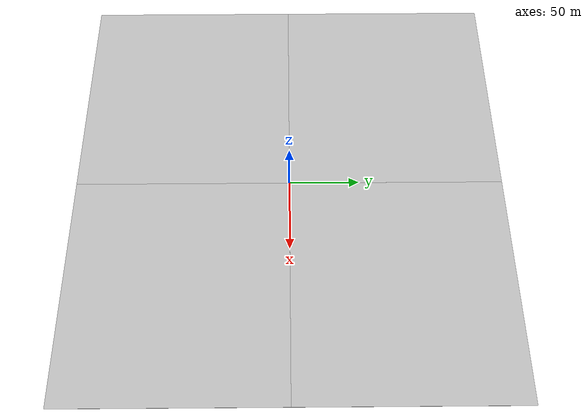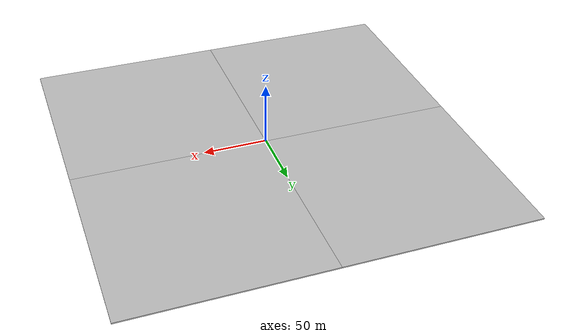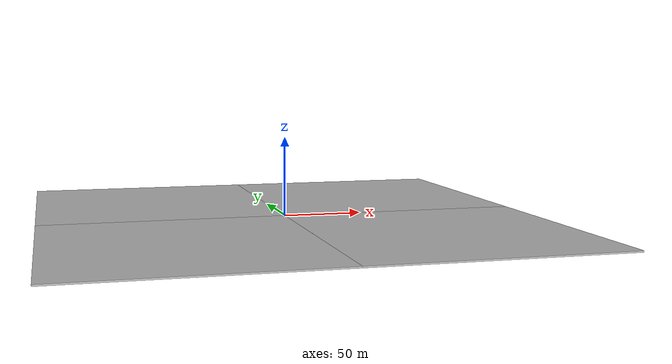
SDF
<sdf version='1.7'>
<model name='map_satellite_36.0834057_140.0767_155_155'>
  <static>true</static>
  <link name='link'>
    <collision name='collision'>
      <pose>0 0 -0.5 0 0 0</pose>
      <geometry>
        <box>
          <size>308.867 308.867 1</size>
        </box>
      </geometry>
    </collision>
    <visual name='visual0_0'>
      <pose>-77.2167 77.2167 -0.5 0 0 1.5708</pose>
      <geometry>
        <box>
          <size>154.433 154.433 1</size>
        </box>
      </geometry>
      <material>
        <script>
          <uri>model://map_satellite_36.0834057_140.0767_155_155/materials/scripts</uri>
          <uri>model://map_satellite_36.0834057_140.0767_155_155/materials/textures</uri>
          <name>map_satellite_36.0834057_140.0767_155_155/0_0</name>
        </script>
      </material>
    </visual>
    <visual name='visual0_1'>
      <pose>77.2167 77.2167 -0.5 0 0 1.5708</pose>
      <geometry>
        <box>
          <size>154.433 154.433 1</size>
        </box>
      </geometry>
      <material>
        <script>
          <uri>model://map_satellite_36.0834057_140.0767_155_155/materials/scripts</uri>
          <uri>model://map_satellite_36.0834057_140.0767_155_155/materials/textures</uri>
          <name>map_satellite_36.0834057_140.0767_155_155/0_1</name>
        </script>
      </material>
    </visual>
    <visual name='visual1_0'>
      <pose>-77.2167 -77.2167 -0.5 0 0 1.5708</pose>
      <geometry>
        <box>
          <size>154.433 154.433 1</size>
        </box>
      </geometry>
      <material>
        <script>
          <uri>model://map_satellite_36.0834057_140.0767_155_155/materials/scripts</uri>
          <uri>model://map_satellite_36.0834057_140.0767_155_155/materials/textures</uri>
          <name>map_satellite_36.0834057_140.0767_155_155/1_0</name>
        </script>
      </material>
    </visual>
    <visual name='visual1_1'>
      <pose>77.2167 -77.2167 -0.5 0 0 1.5708</pose>
      <geometry>
        <box>
          <size>154.433 154.433 1</size>
        </box>
      </geometry>
      <material>
        <script>
          <uri>model://map_satellite_36.0834057_140.0767_155_155/materials/scripts</uri>
          <uri>model://map_satellite_36.0834057_140.0767_155_155/materials/textures</uri>
          <name>map_satellite_36.0834057_140.0767_155_155/1_1</name>
        </script>
      </material>
    </visual>
  </link>
</model>
</sdf>
